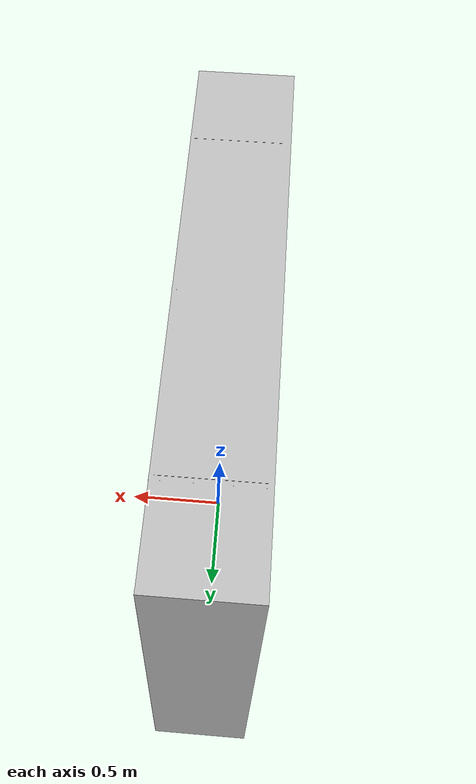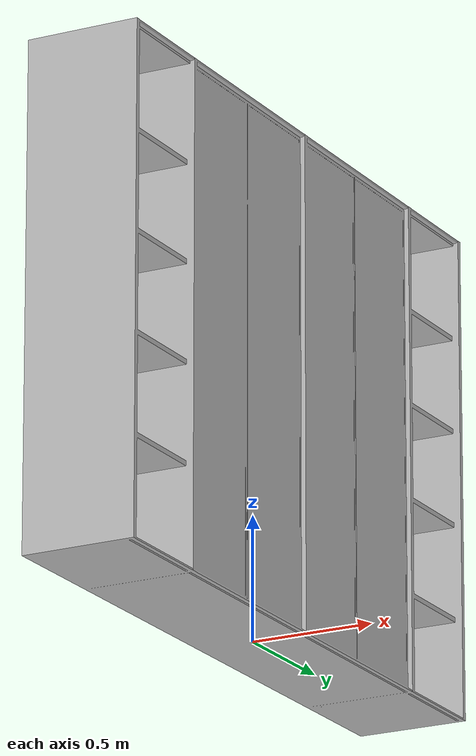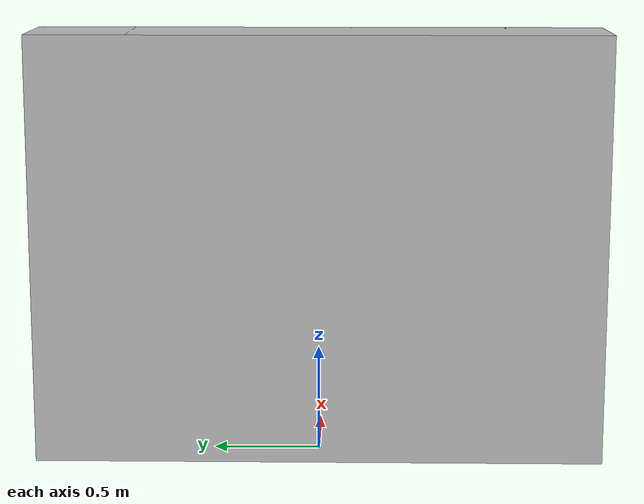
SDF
<?xml version='1.0'?>
<sdf version='1.4'>
  <model name='416'>
    <pose>0 0 0 0 0 0</pose>
    <static>true</static>
    <link name='link'>
      <collision name='collision'>
        <pose>0 0 0 0 0 0</pose>
        <geometry>
          <box>
            <size>0.46 2.66 2</size>
          </box>
        </geometry>
      </collision>
      <visual name='visual'>
        <pose>0 0 0 0 0 0</pose>
        <geometry>
          <mesh><uri>model://416/416.dae</uri></mesh>
        </geometry>
      </visual>
    </link>
  </model>
</sdf>
